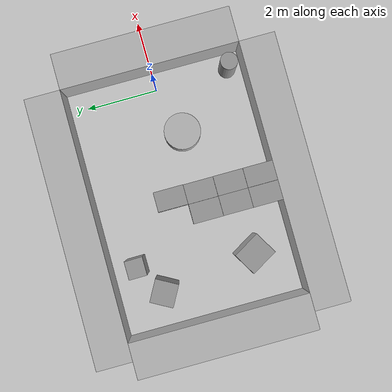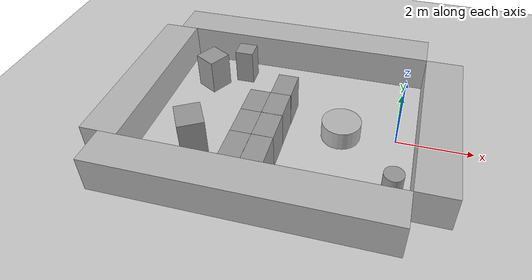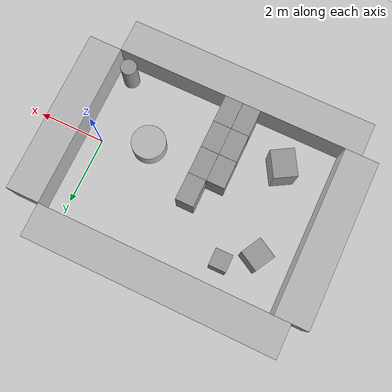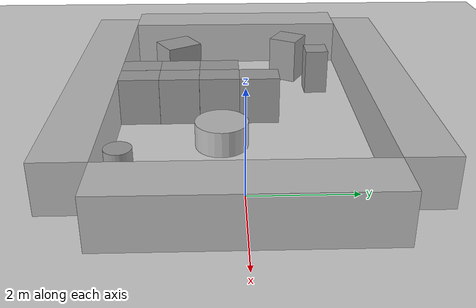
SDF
<sdf version="1.6">
 <world name="default">
  <light name="sun" type="directional">
   <pose>0 0 10 0 -0 0</pose>
   <diffuse>0.8 0.8 0.8 1</diffuse>
   <specular>0.2 0.2 0.2 1</specular>
   <attenuation>
    <range>1000</range>
    <constant>0.9</constant>
    <linear>0.01</linear>
    <quadratic>0.001</quadratic>
   </attenuation>
   <direction>-0.5 0.1 -0.9</direction>
  </light>
  <model name="ground_plane">
   <static>1</static>
   <link name="link">
    <collision name="collision">
     <geometry><plane><normal>0 0 1</normal><size>100 100</size></plane></geometry>
     <surface>
      <contact><collide_bitmask>65535</collide_bitmask></contact>
      <friction><ode><mu>100</mu><mu2>50</mu2></ode></friction>
     </surface>
    </collision>
    <visual name="visual">
     <cast_shadows>0</cast_shadows>
     <geometry><plane><normal>0 0 1</normal><size>100 100</size></plane></geometry>
     <material>
      <script><uri>file://media/materials/scripts/gazebo.material</uri><name>Gazebo/Grey</name></script>
     </material>
    </visual>
   </link>
  </model>
  <model name="table">
   <pose>-1.41012 -0.392678 0.5 0 -0 0</pose>
   <static>1</static>
   <link name="link">
    <inertial>
     <mass>1</mass>
     <inertia><ixx>0.083</ixx><ixy>0</ixy><ixz>0</ixz><iyy>0.083</iyy><iyz>0</iyz><izz>0.083</izz></inertia>
    </inertial>
    <collision name="collision">
     <geometry><cylinder><radius>0.505185</radius><length>0.5</length></cylinder></geometry>
    </collision>
    <visual name="visual">
     <geometry><cylinder><radius>0.505185</radius><length>0.5</length></cylinder></geometry>
    </visual>
   </link>
  </model>
  <model name="south_wall">
   <pose>-3.25 -3 0.5 0 -0 0</pose>
   <static>1</static>
   <link name="link">
    <inertial>
     <mass>1</mass>
     <inertia><ixx>0.083</ixx><ixy>0</ixy><ixz>0</ixz><iyy>0.083</iyy><iyz>0</iyz><izz>0.083</izz></inertia>
    </inertial>
    <collision name="collision"><geometry><box><size>7.5 1 1</size></box></geometry></collision>
    <visual name="visual"><geometry><box><size>7.5 1 1</size></box></geometry></visual>
   </link>
  </model>
  <model name="north_wall">
   <pose>-3.25 3 0.5 0 -0 0</pose>
   <static>1</static>
   <link name="link">
    <inertial>
     <mass>1</mass>
     <inertia><ixx>0.083</ixx><ixy>0</ixy><ixz>0</ixz><iyy>0.083</iyy><iyz>0</iyz><izz>0.083</izz></inertia>
    </inertial>
    <collision name="collision"><geometry><box><size>7.5 1 1</size></box></geometry></collision>
    <visual name="visual"><geometry><box><size>7.5 1 1</size></box></geometry></visual>
   </link>
  </model>
  <model name="east_wall">
   <pose>1 0 0.5 0 -0 0</pose>
   <static>1</static>
   <link name="link">
    <inertial>
     <mass>1</mass>
     <inertia><ixx>0.083</ixx><ixy>0</ixy><ixz>0</ixz><iyy>0.083</iyy><iyz>0</iyz><izz>0.083</izz></inertia>
    </inertial>
    <collision name="collision"><geometry><box><size>1 5 1</size></box></geometry></collision>
    <visual name="visual"><geometry><box><size>1 5 1</size></box></geometry></visual>
   </link>
  </model>
  <model name="west_wall">
   <pose>-7 0 0.5 0 -0 0</pose>
   <static>1</static>
   <link name="link">
    <inertial>
     <mass>1</mass>
     <inertia><ixx>0.083</ixx><ixy>0</ixy><ixz>0</ixz><iyy>0.083</iyy><iyz>0</iyz><izz>0.083</izz></inertia>
    </inertial>
    <collision name="collision"><geometry><box><size>1 5 1</size></box></geometry></collision>
    <visual name="visual"><geometry><box><size>1 5 1</size></box></geometry></visual>
   </link>
  </model>
  <physics name="default_physics" default="0" type="ode">
   <max_step_size>0.01</max_step_size>
   <real_time_factor>1</real_time_factor>
   <real_time_update_rate>100</real_time_update_rate>
  </physics>
  <gravity>0 0 -9.8</gravity>
  <magnetic_field>6e-06 2.3e-05 -4.2e-05</magnetic_field>
  <atmosphere type="adiabatic"/>
  <scene><ambient>0.4 0.4 0.4 1</ambient><background>0.7 0.7 0.7 1</background><shadows>1</shadows></scene>
  <spherical_coordinates>
   <surface_model>EARTH_WGS84</surface_model>
   <latitude_deg>0</latitude_deg>
   <longitude_deg>0</longitude_deg>
   <elevation>0</elevation>
   <heading_deg>0</heading_deg>
  </spherical_coordinates>
  <model name="unit_box">
   <pose>-3.10663 -2.08636 0.5 0 -0 0.00041</pose>
   <link name="link">
    <inertial>
     <mass>1</mass>
     <inertia>
      <ixx>0.166667</ixx>
      <ixy>0</ixy>
      <ixz>0</ixz>
      <iyy>0.166667</iyy>
      <iyz>0</iyz>
      <izz>0.166667</izz>
     </inertia>
    </inertial>
    <collision name="collision"><geometry><box><size>0.543911 0.827038 1</size></box></geometry></collision>
    <visual name="visual">
     <geometry><box><size>0.543911 0.827038 1</size></box></geometry>
     <material>
      <script><name>Gazebo/Grey</name><uri>file://media/materials/scripts/gazebo.material</uri></script>
     </material>
    </visual>
   </link>
  </model>
  <model name="unit_box_1">
   <pose>-5.12136 -1.38891 0.5 0 -0 0.53036</pose>
   <link name="link">
    <inertial>
     <mass>1</mass>
     <inertia>
      <ixx>0.166667</ixx>
      <ixy>0</ixy>
      <ixz>0</ixz>
      <iyy>0.166667</iyy>
      <iyz>0</iyz>
      <izz>0.166667</izz>
     </inertia>
    </inertial>
    <collision name="collision"><geometry><box><size>0.690558 0.819483 1</size></box></geometry></collision>
    <visual name="visual">
     <geometry><box><size>0.690558 0.819483 1</size></box></geometry>
     <material>
      <script><name>Gazebo/Grey</name><uri>file://media/materials/scripts/gazebo.material</uri></script>
     </material>
    </visual>
   </link>
  </model>
  <model name="unit_box_2">
   <pose>-5.48778 1.22512 0.500017 0 5.4e-05 -0.505139</pose>
   <link name="link">
    <inertial>
     <mass>1</mass>
     <inertia>
      <ixx>0.166667</ixx>
      <ixy>0</ixy>
      <ixz>0</ixz>
      <iyy>0.166667</iyy>
      <iyz>0</iyz>
      <izz>0.166667</izz>
     </inertia>
    </inertial>
    <collision name="collision"><geometry><box><size>0.639721 0.649415 1</size></box></geometry></collision>
    <visual name="visual">
     <geometry><box><size>0.639721 0.649415 1</size></box></geometry>
     <material>
      <script><name>Gazebo/Grey</name><uri>file://media/materials/scripts/gazebo.material</uri></script>
     </material>
    </visual>
   </link>
  </model>
  <model name="unit_box_clone">
   <pose>-3.108 -1.25837 0.49993 -0.00017 0 0.000275</pose>
   <link name="link">
    <inertial>
     <mass>1</mass>
     <inertia>
      <ixx>0.166667</ixx>
      <ixy>0</ixy>
      <ixz>0</ixz>
      <iyy>0.166667</iyy>
      <iyz>0</iyz>
      <izz>0.166667</izz>
     </inertia>
    </inertial>
    <collision name="collision"><geometry><box><size>0.543912 0.827038 1</size></box></geometry></collision>
    <visual name="visual">
     <geometry><box><size>0.543912 0.827038 1</size></box></geometry>
     <material>
      <script><name>Gazebo/Grey</name><uri>file://media/materials/scripts/gazebo.material</uri></script>
     </material>
    </visual>
   </link>
  </model>
  <model name="unit_box_clone_0">
   <pose>-3.11136 -0.429804 0.499852 -0 0.000543 0.000531</pose>
   <link name="link">
    <inertial>
     <mass>1</mass>
     <inertia>
      <ixx>0.166667</ixx>
      <ixy>0</ixy>
      <ixz>0</ixz>
      <iyy>0.166667</iyy>
      <iyz>0</iyz>
      <izz>0.166667</izz>
     </inertia>
    </inertial>
    <collision name="collision"><geometry><box><size>0.543912 0.827038 1</size></box></geometry></collision>
    <visual name="visual">
     <geometry><box><size>0.543912 0.827038 1</size></box></geometry>
     <material>
      <script><name>Gazebo/Grey</name><uri>file://media/materials/scripts/gazebo.material</uri></script>
     </material>
    </visual>
   </link>
  </model>
  <model name="unit_box_clone_1">
   <pose>-3.10484 0.397244 0.5 0 -0 0.000533</pose>
   <link name="link">
    <inertial>
     <mass>1</mass>
     <inertia>
      <ixx>0.166667</ixx>
      <ixy>0</ixy>
      <ixz>0</ixz>
      <iyy>0.166667</iyy>
      <iyz>0</iyz>
      <izz>0.166667</izz>
     </inertia>
    </inertial>
    <collision name="collision"><geometry><box><size>0.543912 0.827038 1</size></box></geometry></collision>
    <visual name="visual">
     <geometry><box><size>0.543912 0.827038 1</size></box></geometry>
     <material>
      <script><name>Gazebo/Grey</name><uri>file://media/materials/scripts/gazebo.material</uri></script>
     </material>
    </visual>
   </link>
  </model>
  <model name="unit_box_clone_2">
   <pose>-3.65365 -2.08643 0.49912 0 -0 0.000137</pose>
   <link name="link">
    <inertial>
     <mass>1</mass>
     <inertia>
      <ixx>0.166667</ixx>
      <ixy>0</ixy>
      <ixz>0</ixz>
      <iyy>0.166667</iyy>
      <iyz>0</iyz>
      <izz>0.166667</izz>
     </inertia>
    </inertial>
    <collision name="collision"><geometry><box><size>0.543912 0.827038 1</size></box></geometry></collision>
    <visual name="visual">
     <geometry><box><size>0.543912 0.827038 1</size></box></geometry>
     <material>
      <script><name>Gazebo/Grey</name><uri>file://media/materials/scripts/gazebo.material</uri></script>
     </material>
    </visual>
   </link>
  </model>
  <model name="unit_box_clone_3">
   <pose>-3.65212 -1.25951 0.499798 0.000488 -0 0.00051</pose>
   <link name="link">
    <inertial>
     <mass>1</mass>
     <inertia>
      <ixx>0.166667</ixx>
      <ixy>0</ixy>
      <ixz>0</ixz>
      <iyy>0.166667</iyy>
      <iyz>0</iyz>
      <izz>0.166667</izz>
     </inertia>
    </inertial>
    <collision name="collision"><geometry><box><size>0.543912 0.827038 1</size></box></geometry></collision>
    <visual name="visual">
     <geometry><box><size>0.543912 0.827038 1</size></box></geometry>
     <material>
      <script><name>Gazebo/Grey</name><uri>file://media/materials/scripts/gazebo.material</uri></script>
     </material>
    </visual>
   </link>
  </model>
  <model name="unit_box_clone_4">
   <pose>-3.65599 -0.432075 0.49912 0 0 -1.3e-05</pose>
   <link name="link">
    <inertial>
     <mass>1</mass>
     <inertia>
      <ixx>0.166667</ixx>
      <ixy>0</ixy>
      <ixz>0</ixz>
      <iyy>0.166667</iyy>
      <iyz>0</iyz>
      <izz>0.166667</izz>
     </inertia>
    </inertial>
    <collision name="collision"><geometry><box><size>0.543912 0.827038 1</size></box></geometry></collision>
    <visual name="visual">
     <geometry><box><size>0.543912 0.827038 1</size></box></geometry>
     <material>
      <script><name>Gazebo/Grey</name><uri>file://media/materials/scripts/gazebo.material</uri></script>
     </material>
    </visual>
   </link>
  </model>
  <model name="unit_box_2_clone">
   <pose>-4.65264 1.78745 0.5 0 -0 0.009594</pose>
   <link name="link">
    <inertial>
     <mass>1</mass>
     <inertia>
      <ixx>0.166667</ixx>
      <ixy>0</ixy>
      <ixz>0</ixz>
      <iyy>0.166667</iyy>
      <iyz>0</iyz>
      <izz>0.166667</izz>
     </inertia>
    </inertial>
    <collision name="collision"><geometry><box><size>0.509791 0.501942 1</size></box></geometry></collision>
    <visual name="visual">
     <geometry><box><size>0.509791 0.501942 1</size></box></geometry>
     <material>
      <script><name>Gazebo/Grey</name><uri>file://media/materials/scripts/gazebo.material</uri></script>
     </material>
    </visual>
   </link>
  </model>
  <model name="unit_cylinder">
   <pose>0.053717 -2.10352 0.49912 0 -0 3e-06</pose>
   <link name="link">
    <inertial>
     <mass>1</mass>
     <inertia><ixx>0.145833</ixx><ixy>0</ixy><ixz>0</ixz><iyy>0.145833</iyy><iyz>0</iyz><izz>0.125</izz></inertia>
    </inertial>
    <collision name="collision">
     <geometry><cylinder><radius>0.24113</radius><length>1</length></cylinder></geometry>
    </collision>
    <visual name="visual">
     <geometry><cylinder><radius>0.24113</radius><length>1</length></cylinder></geometry>
     <material>
      <script><name>Gazebo/Grey</name><uri>file://media/materials/scripts/gazebo.material</uri></script>
     </material>
    </visual>
   </link>
  </model>
 </world>
</sdf>
